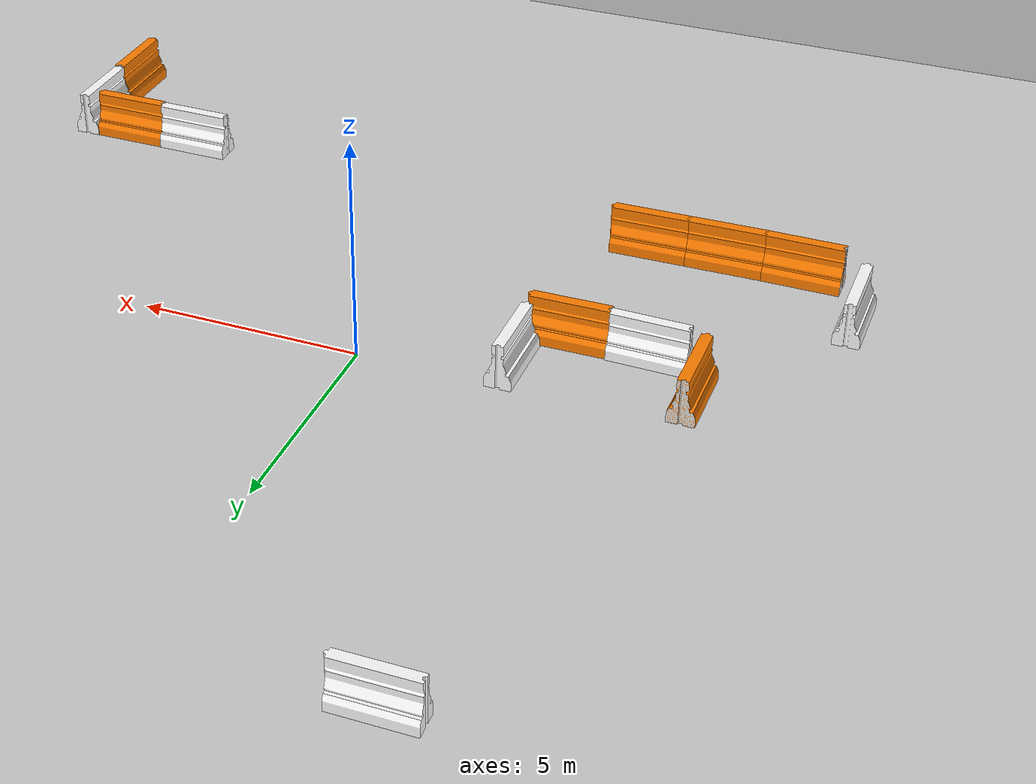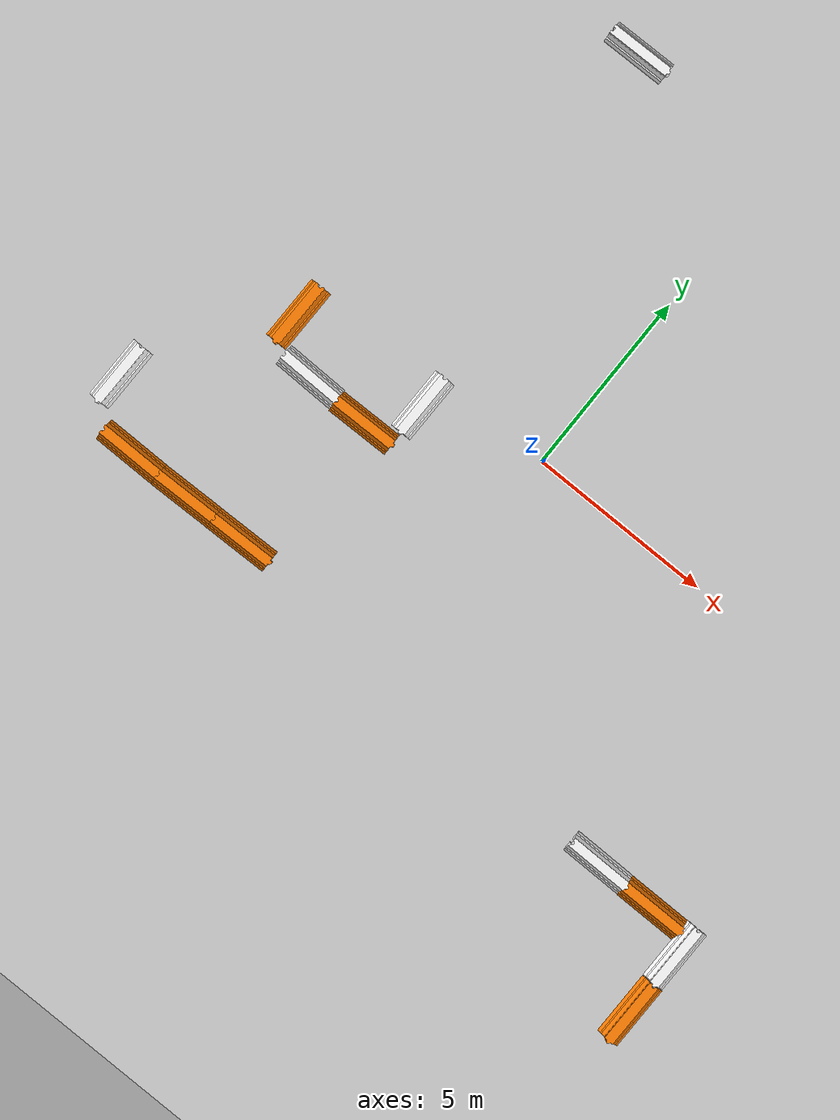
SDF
<sdf version="1.6">
 <world name="default">
  <light name="sun" type="directional">
   <pose>0 0 10 0 -0 0</pose>
   <diffuse>0.8 0.8 0.8 1</diffuse>
   <specular>0.2 0.2 0.2 1</specular>
   <attenuation>
    <range>1000</range>
    <constant>0.9</constant>
    <linear>0.01</linear>
    <quadratic>0.001</quadratic>
   </attenuation>
   <direction>-0.5 0.1 -0.9</direction>
  </light>
  <model name="ground_plane">
   <static>1</static>
   <link name="link">
    <collision name="collision">
     <geometry><plane><normal>0 0 1</normal><size>100 100</size></plane></geometry>
     <surface><friction><ode><mu>100</mu><mu2>50</mu2></ode></friction></surface>
    </collision>
    <visual name="visual">
     <cast_shadows>0</cast_shadows>
     <geometry><plane><normal>0 0 1</normal><size>100 100</size></plane></geometry>
     <material>
      <script><uri>file://media/materials/scripts/gazebo.material</uri><name>Gazebo/Grey</name></script>
     </material>
    </visual>
    <velocity_decay><linear>0</linear><angular>0</angular></velocity_decay>
   </link>
  </model>
  <physics name="default_physics" default="0" type="ode">
   <max_step_size>0.001</max_step_size>
   <real_time_factor>1</real_time_factor>
   <real_time_update_rate>1000</real_time_update_rate>
  </physics>
  <scene><ambient>0.4 0.4 0.4 1</ambient><background>0.7 0.7 0.7 1</background><shadows>1</shadows></scene>
  <spherical_coordinates>
   <surface_model>EARTH_WGS84</surface_model>
   <latitude_deg>0</latitude_deg>
   <longitude_deg>0</longitude_deg>
   <elevation>0</elevation>
   <heading_deg>0</heading_deg>
  </spherical_coordinates>
  <model name="drc_practice_organge_jersey_barrier">
   <static>1</static>
   <link name="link">
    <visual name="visual">
     <geometry>
      <mesh><uri>model://drc_practice_orange_jersey_barrier/meshes/jersey_barrier.dae</uri></mesh>
     </geometry>
    </visual>
    <collision name="collision">
     <geometry>
      <mesh><uri>model://drc_practice_orange_jersey_barrier/meshes/jersey_barrier.dae</uri></mesh>
     </geometry>
    </collision>
    <velocity_decay><linear>0</linear><angular>0</angular></velocity_decay>
   </link>
   <pose>-4.54889 -6.23392 0 0 -0 1.59364</pose>
  </model>
  <model name="drc_practice_white_jersey_barrier">
   <static>1</static>
   <link name="link">
    <visual name="visual">
     <geometry>
      <mesh><uri>model://drc_practice_white_jersey_barrier/meshes/jersey_barrier.dae</uri></mesh>
     </geometry>
    </visual>
    <collision name="collision">
     <geometry>
      <mesh><uri>model://drc_practice_white_jersey_barrier/meshes/jersey_barrier.dae</uri></mesh>
     </geometry>
    </collision>
    <velocity_decay><linear>0</linear><angular>0</angular></velocity_decay>
   </link>
   <pose>-9.48699 -4.9367 0 0 -0 0</pose>
  </model>
  <model name="drc_practice_organge_jersey_barrier_0">
   <static>1</static>
   <link name="link">
    <visual name="visual">
     <geometry>
      <mesh><uri>model://drc_practice_orange_jersey_barrier/meshes/jersey_barrier.dae</uri></mesh>
     </geometry>
    </visual>
    <collision name="collision">
     <geometry>
      <mesh><uri>model://drc_practice_orange_jersey_barrier/meshes/jersey_barrier.dae</uri></mesh>
     </geometry>
    </collision>
    <velocity_decay><linear>0</linear><angular>0</angular></velocity_decay>
   </link>
   <pose>-6.30934 -6.26351 0 0 -0 1.59467</pose>
  </model>
  <model name="drc_practice_organge_jersey_barrier_1">
   <static>1</static>
   <link name="link">
    <visual name="visual">
     <geometry>
      <mesh><uri>model://drc_practice_orange_jersey_barrier/meshes/jersey_barrier.dae</uri></mesh>
     </geometry>
    </visual>
    <collision name="collision">
     <geometry>
      <mesh><uri>model://drc_practice_orange_jersey_barrier/meshes/jersey_barrier.dae</uri></mesh>
     </geometry>
    </collision>
    <velocity_decay><linear>0</linear><angular>0</angular></velocity_decay>
   </link>
   <pose>-8.06556 -6.2736 0 0 -0 1.57109</pose>
  </model>
  <model name="drc_practice_white_jersey_barrier_0">
   <static>1</static>
   <link name="link">
    <visual name="visual">
     <geometry>
      <mesh><uri>model://drc_practice_white_jersey_barrier/meshes/jersey_barrier.dae</uri></mesh>
     </geometry>
    </visual>
    <collision name="collision">
     <geometry>
      <mesh><uri>model://drc_practice_white_jersey_barrier/meshes/jersey_barrier.dae</uri></mesh>
     </geometry>
    </collision>
    <velocity_decay><linear>0</linear><angular>0</angular></velocity_decay>
   </link>
   <pose>10.3176 -7.4365 0 0 -0 0</pose>
  </model>
  <model name="drc_practice_white_jersey_barrier_1">
   <static>1</static>
   <link name="link">
    <visual name="visual">
     <geometry>
      <mesh><uri>model://drc_practice_white_jersey_barrier/meshes/jersey_barrier.dae</uri></mesh>
     </geometry>
    </visual>
    <collision name="collision">
     <geometry>
      <mesh><uri>model://drc_practice_white_jersey_barrier/meshes/jersey_barrier.dae</uri></mesh>
     </geometry>
    </collision>
    <velocity_decay><linear>0</linear><angular>0</angular></velocity_decay>
   </link>
   <pose>-4.54271 9.38577 0 0 -0 1.59123</pose>
  </model>
  <model name="drc_practice_organge_jersey_barrier_2">
   <static>1</static>
   <link name="link">
    <visual name="visual">
     <geometry>
      <mesh><uri>model://drc_practice_orange_jersey_barrier/meshes/jersey_barrier.dae</uri></mesh>
     </geometry>
    </visual>
    <collision name="collision">
     <geometry>
      <mesh><uri>model://drc_practice_orange_jersey_barrier/meshes/jersey_barrier.dae</uri></mesh>
     </geometry>
    </collision>
    <velocity_decay><linear>0</linear><angular>0</angular></velocity_decay>
   </link>
   <pose>10.3218 -9.21435 0 0 -0 0</pose>
  </model>
  <model name="drc_practice_organge_jersey_barrier_3">
   <static>1</static>
   <link name="link">
    <visual name="visual">
     <geometry>
      <mesh><uri>model://drc_practice_orange_jersey_barrier/meshes/jersey_barrier.dae</uri></mesh>
     </geometry>
    </visual>
    <collision name="collision">
     <geometry>
      <mesh><uri>model://drc_practice_orange_jersey_barrier/meshes/jersey_barrier.dae</uri></mesh>
     </geometry>
    </collision>
    <velocity_decay><linear>0</linear><angular>0</angular></velocity_decay>
   </link>
   <pose>-7 -1 0 0 -0 0</pose>
  </model>
  <model name="drc_practice_white_jersey_barrier_2">
   <static>1</static>
   <link name="link">
    <visual name="visual">
     <geometry>
      <mesh><uri>model://drc_practice_white_jersey_barrier/meshes/jersey_barrier.dae</uri></mesh>
     </geometry>
    </visual>
    <collision name="collision">
     <geometry>
      <mesh><uri>model://drc_practice_white_jersey_barrier/meshes/jersey_barrier.dae</uri></mesh>
     </geometry>
    </collision>
    <velocity_decay><linear>0</linear><angular>0</angular></velocity_decay>
   </link>
   <pose>7.38439 -6.85992 0 0 -0 1.56803</pose>
  </model>
  <model name="drc_practice_organge_jersey_barrier_4">
   <static>1</static>
   <link name="link">
    <visual name="visual">
     <geometry>
      <mesh><uri>model://drc_practice_orange_jersey_barrier/meshes/jersey_barrier.dae</uri></mesh>
     </geometry>
    </visual>
    <collision name="collision">
     <geometry>
      <mesh><uri>model://drc_practice_orange_jersey_barrier/meshes/jersey_barrier.dae</uri></mesh>
     </geometry>
    </collision>
    <velocity_decay><linear>0</linear><angular>0</angular></velocity_decay>
   </link>
   <pose>9.12871 -6.87691 0 0 -0 1.57364</pose>
  </model>
  <model name="drc_practice_white_jersey_barrier_3">
   <static>1</static>
   <link name="link">
    <visual name="visual">
     <geometry>
      <mesh><uri>model://drc_practice_white_jersey_barrier/meshes/jersey_barrier.dae</uri></mesh>
     </geometry>
    </visual>
    <collision name="collision">
     <geometry>
      <mesh><uri>model://drc_practice_white_jersey_barrier/meshes/jersey_barrier.dae</uri></mesh>
     </geometry>
    </collision>
    <velocity_decay><linear>0</linear><angular>0</angular></velocity_decay>
   </link>
   <pose>-5.77824 -2.0228 0 0 -0 1.55607</pose>
  </model>
  <model name="drc_practice_white_jersey_barrier_4">
   <static>1</static>
   <link name="link">
    <visual name="visual">
     <geometry>
      <mesh><uri>model://drc_practice_white_jersey_barrier/meshes/jersey_barrier.dae</uri></mesh>
     </geometry>
    </visual>
    <collision name="collision">
     <geometry>
      <mesh><uri>model://drc_practice_white_jersey_barrier/meshes/jersey_barrier.dae</uri></mesh>
     </geometry>
    </collision>
    <velocity_decay><linear>0</linear><angular>0</angular></velocity_decay>
   </link>
   <pose>-3.17991 -0.801094 0 0 -0 0</pose>
  </model>
  <model name="drc_practice_organge_jersey_barrier_5">
   <static>1</static>
   <link name="link">
    <visual name="visual">
     <geometry>
      <mesh><uri>model://drc_practice_orange_jersey_barrier/meshes/jersey_barrier.dae</uri></mesh>
     </geometry>
    </visual>
    <collision name="collision">
     <geometry>
      <mesh><uri>model://drc_practice_orange_jersey_barrier/meshes/jersey_barrier.dae</uri></mesh>
     </geometry>
    </collision>
    <velocity_decay><linear>0</linear><angular>0</angular></velocity_decay>
   </link>
   <pose>-4.03019 -2.06074 0 0 -0 1.58908</pose>
  </model>
  <gravity>0 0 -9.8</gravity>
  <magnetic_field>6e-06 2.3e-05 -4.2e-05</magnetic_field>
  <atmosphere type="adiabatic"/>
 </world>
</sdf>
